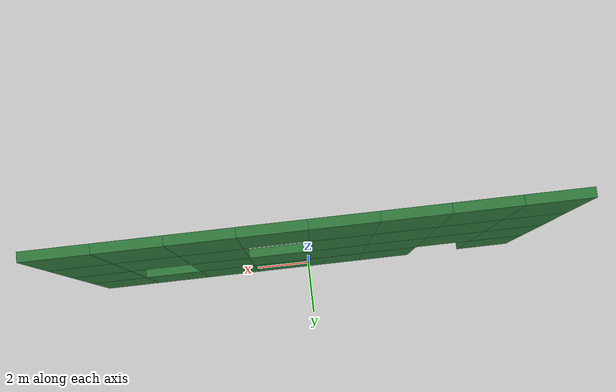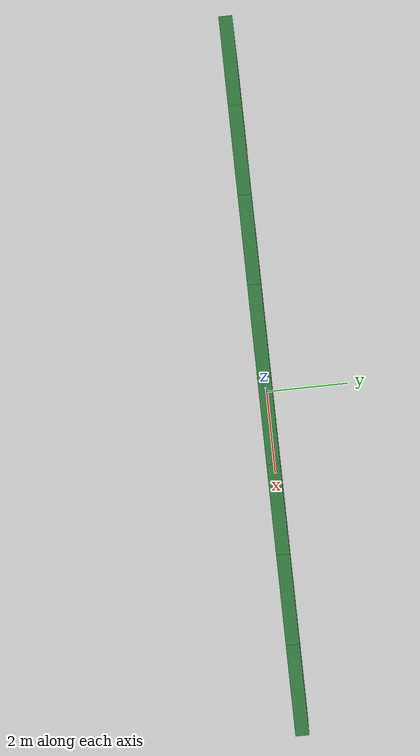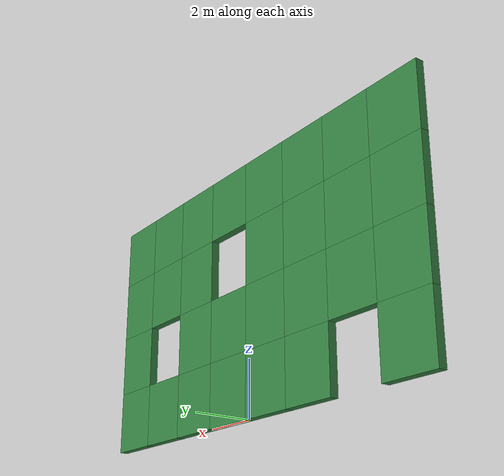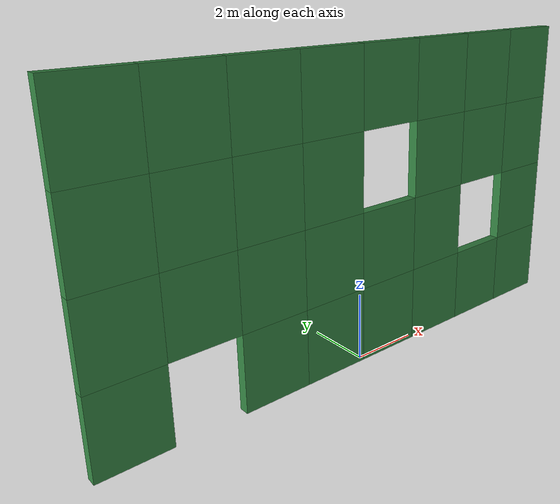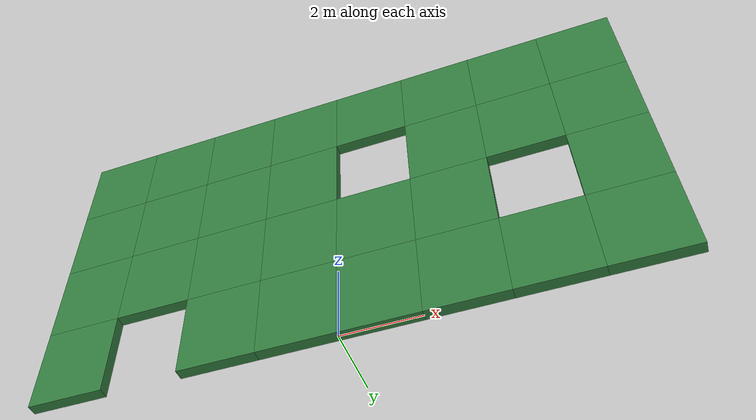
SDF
<?xml version="1.0"?>
<sdf version="1.8">
<model name="cheese_wall">
  <static>true</static>
  <link name="link">

    <collision name="cell_c0_r0"><pose>-7.0000 0 1.1250 0 0 0</pose><geometry><box><size>2.0000 0.3 2.2500</size></box></geometry></collision>
    <visual name="cell_c0_r0_v"><cast_shadows>false</cast_shadows><pose>-7.0000 0 1.1250 0 0 0</pose><geometry><box><size>2.0000 0.3 2.2500</size></box></geometry><material><ambient>0.15 0.4 0.2 1</ambient><diffuse>0.2 0.5 0.25 1</diffuse><specular>0.15 0.15 0.15 1</specular></material></visual>

    <collision name="cell_c2_r0"><pose>-3.0000 0 1.1250 0 0 0</pose><geometry><box><size>2.0000 0.3 2.2500</size></box></geometry></collision>
    <visual name="cell_c2_r0_v"><cast_shadows>false</cast_shadows><pose>-3.0000 0 1.1250 0 0 0</pose><geometry><box><size>2.0000 0.3 2.2500</size></box></geometry><material><ambient>0.15 0.4 0.2 1</ambient><diffuse>0.2 0.5 0.25 1</diffuse><specular>0.15 0.15 0.15 1</specular></material></visual>

    <collision name="cell_c3_r0"><pose>-1.0000 0 1.1250 0 0 0</pose><geometry><box><size>2.0000 0.3 2.2500</size></box></geometry></collision>
    <visual name="cell_c3_r0_v"><cast_shadows>false</cast_shadows><pose>-1.0000 0 1.1250 0 0 0</pose><geometry><box><size>2.0000 0.3 2.2500</size></box></geometry><material><ambient>0.15 0.4 0.2 1</ambient><diffuse>0.2 0.5 0.25 1</diffuse><specular>0.15 0.15 0.15 1</specular></material></visual>

    <collision name="cell_c4_r0"><pose>1.0000 0 1.1250 0 0 0</pose><geometry><box><size>2.0000 0.3 2.2500</size></box></geometry></collision>
    <visual name="cell_c4_r0_v"><cast_shadows>false</cast_shadows><pose>1.0000 0 1.1250 0 0 0</pose><geometry><box><size>2.0000 0.3 2.2500</size></box></geometry><material><ambient>0.15 0.4 0.2 1</ambient><diffuse>0.2 0.5 0.25 1</diffuse><specular>0.15 0.15 0.15 1</specular></material></visual>

    <collision name="cell_c5_r0"><pose>3.0000 0 1.1250 0 0 0</pose><geometry><box><size>2.0000 0.3 2.2500</size></box></geometry></collision>
    <visual name="cell_c5_r0_v"><cast_shadows>false</cast_shadows><pose>3.0000 0 1.1250 0 0 0</pose><geometry><box><size>2.0000 0.3 2.2500</size></box></geometry><material><ambient>0.15 0.4 0.2 1</ambient><diffuse>0.2 0.5 0.25 1</diffuse><specular>0.15 0.15 0.15 1</specular></material></visual>

    <collision name="cell_c6_r0"><pose>5.0000 0 1.1250 0 0 0</pose><geometry><box><size>2.0000 0.3 2.2500</size></box></geometry></collision>
    <visual name="cell_c6_r0_v"><cast_shadows>false</cast_shadows><pose>5.0000 0 1.1250 0 0 0</pose><geometry><box><size>2.0000 0.3 2.2500</size></box></geometry><material><ambient>0.15 0.4 0.2 1</ambient><diffuse>0.2 0.5 0.25 1</diffuse><specular>0.15 0.15 0.15 1</specular></material></visual>

    <collision name="cell_c7_r0"><pose>7.0000 0 1.1250 0 0 0</pose><geometry><box><size>2.0000 0.3 2.2500</size></box></geometry></collision>
    <visual name="cell_c7_r0_v"><cast_shadows>false</cast_shadows><pose>7.0000 0 1.1250 0 0 0</pose><geometry><box><size>2.0000 0.3 2.2500</size></box></geometry><material><ambient>0.15 0.4 0.2 1</ambient><diffuse>0.2 0.5 0.25 1</diffuse><specular>0.15 0.15 0.15 1</specular></material></visual>

    <collision name="cell_c0_r1"><pose>-7.0000 0 3.3750 0 0 0</pose><geometry><box><size>2.0000 0.3 2.2500</size></box></geometry></collision>
    <visual name="cell_c0_r1_v"><cast_shadows>false</cast_shadows><pose>-7.0000 0 3.3750 0 0 0</pose><geometry><box><size>2.0000 0.3 2.2500</size></box></geometry><material><ambient>0.15 0.4 0.2 1</ambient><diffuse>0.2 0.5 0.25 1</diffuse><specular>0.15 0.15 0.15 1</specular></material></visual>

    <collision name="cell_c1_r1"><pose>-5.0000 0 3.3750 0 0 0</pose><geometry><box><size>2.0000 0.3 2.2500</size></box></geometry></collision>
    <visual name="cell_c1_r1_v"><cast_shadows>false</cast_shadows><pose>-5.0000 0 3.3750 0 0 0</pose><geometry><box><size>2.0000 0.3 2.2500</size></box></geometry><material><ambient>0.15 0.4 0.2 1</ambient><diffuse>0.2 0.5 0.25 1</diffuse><specular>0.15 0.15 0.15 1</specular></material></visual>

    <collision name="cell_c2_r1"><pose>-3.0000 0 3.3750 0 0 0</pose><geometry><box><size>2.0000 0.3 2.2500</size></box></geometry></collision>
    <visual name="cell_c2_r1_v"><cast_shadows>false</cast_shadows><pose>-3.0000 0 3.3750 0 0 0</pose><geometry><box><size>2.0000 0.3 2.2500</size></box></geometry><material><ambient>0.15 0.4 0.2 1</ambient><diffuse>0.2 0.5 0.25 1</diffuse><specular>0.15 0.15 0.15 1</specular></material></visual>

    <collision name="cell_c3_r1"><pose>-1.0000 0 3.3750 0 0 0</pose><geometry><box><size>2.0000 0.3 2.2500</size></box></geometry></collision>
    <visual name="cell_c3_r1_v"><cast_shadows>false</cast_shadows><pose>-1.0000 0 3.3750 0 0 0</pose><geometry><box><size>2.0000 0.3 2.2500</size></box></geometry><material><ambient>0.15 0.4 0.2 1</ambient><diffuse>0.2 0.5 0.25 1</diffuse><specular>0.15 0.15 0.15 1</specular></material></visual>

    <collision name="cell_c4_r1"><pose>1.0000 0 3.3750 0 0 0</pose><geometry><box><size>2.0000 0.3 2.2500</size></box></geometry></collision>
    <visual name="cell_c4_r1_v"><cast_shadows>false</cast_shadows><pose>1.0000 0 3.3750 0 0 0</pose><geometry><box><size>2.0000 0.3 2.2500</size></box></geometry><material><ambient>0.15 0.4 0.2 1</ambient><diffuse>0.2 0.5 0.25 1</diffuse><specular>0.15 0.15 0.15 1</specular></material></visual>

    <collision name="cell_c5_r1"><pose>3.0000 0 3.3750 0 0 0</pose><geometry><box><size>2.0000 0.3 2.2500</size></box></geometry></collision>
    <visual name="cell_c5_r1_v"><cast_shadows>false</cast_shadows><pose>3.0000 0 3.3750 0 0 0</pose><geometry><box><size>2.0000 0.3 2.2500</size></box></geometry><material><ambient>0.15 0.4 0.2 1</ambient><diffuse>0.2 0.5 0.25 1</diffuse><specular>0.15 0.15 0.15 1</specular></material></visual>

    <collision name="cell_c7_r1"><pose>7.0000 0 3.3750 0 0 0</pose><geometry><box><size>2.0000 0.3 2.2500</size></box></geometry></collision>
    <visual name="cell_c7_r1_v"><cast_shadows>false</cast_shadows><pose>7.0000 0 3.3750 0 0 0</pose><geometry><box><size>2.0000 0.3 2.2500</size></box></geometry><material><ambient>0.15 0.4 0.2 1</ambient><diffuse>0.2 0.5 0.25 1</diffuse><specular>0.15 0.15 0.15 1</specular></material></visual>

    <collision name="cell_c0_r2"><pose>-7.0000 0 5.6250 0 0 0</pose><geometry><box><size>2.0000 0.3 2.2500</size></box></geometry></collision>
    <visual name="cell_c0_r2_v"><cast_shadows>false</cast_shadows><pose>-7.0000 0 5.6250 0 0 0</pose><geometry><box><size>2.0000 0.3 2.2500</size></box></geometry><material><ambient>0.15 0.4 0.2 1</ambient><diffuse>0.2 0.5 0.25 1</diffuse><specular>0.15 0.15 0.15 1</specular></material></visual>

    <collision name="cell_c1_r2"><pose>-5.0000 0 5.6250 0 0 0</pose><geometry><box><size>2.0000 0.3 2.2500</size></box></geometry></collision>
    <visual name="cell_c1_r2_v"><cast_shadows>false</cast_shadows><pose>-5.0000 0 5.6250 0 0 0</pose><geometry><box><size>2.0000 0.3 2.2500</size></box></geometry><material><ambient>0.15 0.4 0.2 1</ambient><diffuse>0.2 0.5 0.25 1</diffuse><specular>0.15 0.15 0.15 1</specular></material></visual>

    <collision name="cell_c2_r2"><pose>-3.0000 0 5.6250 0 0 0</pose><geometry><box><size>2.0000 0.3 2.2500</size></box></geometry></collision>
    <visual name="cell_c2_r2_v"><cast_shadows>false</cast_shadows><pose>-3.0000 0 5.6250 0 0 0</pose><geometry><box><size>2.0000 0.3 2.2500</size></box></geometry><material><ambient>0.15 0.4 0.2 1</ambient><diffuse>0.2 0.5 0.25 1</diffuse><specular>0.15 0.15 0.15 1</specular></material></visual>

    <collision name="cell_c3_r2"><pose>-1.0000 0 5.6250 0 0 0</pose><geometry><box><size>2.0000 0.3 2.2500</size></box></geometry></collision>
    <visual name="cell_c3_r2_v"><cast_shadows>false</cast_shadows><pose>-1.0000 0 5.6250 0 0 0</pose><geometry><box><size>2.0000 0.3 2.2500</size></box></geometry><material><ambient>0.15 0.4 0.2 1</ambient><diffuse>0.2 0.5 0.25 1</diffuse><specular>0.15 0.15 0.15 1</specular></material></visual>

    <collision name="cell_c5_r2"><pose>3.0000 0 5.6250 0 0 0</pose><geometry><box><size>2.0000 0.3 2.2500</size></box></geometry></collision>
    <visual name="cell_c5_r2_v"><cast_shadows>false</cast_shadows><pose>3.0000 0 5.6250 0 0 0</pose><geometry><box><size>2.0000 0.3 2.2500</size></box></geometry><material><ambient>0.15 0.4 0.2 1</ambient><diffuse>0.2 0.5 0.25 1</diffuse><specular>0.15 0.15 0.15 1</specular></material></visual>

    <collision name="cell_c6_r2"><pose>5.0000 0 5.6250 0 0 0</pose><geometry><box><size>2.0000 0.3 2.2500</size></box></geometry></collision>
    <visual name="cell_c6_r2_v"><cast_shadows>false</cast_shadows><pose>5.0000 0 5.6250 0 0 0</pose><geometry><box><size>2.0000 0.3 2.2500</size></box></geometry><material><ambient>0.15 0.4 0.2 1</ambient><diffuse>0.2 0.5 0.25 1</diffuse><specular>0.15 0.15 0.15 1</specular></material></visual>

    <collision name="cell_c7_r2"><pose>7.0000 0 5.6250 0 0 0</pose><geometry><box><size>2.0000 0.3 2.2500</size></box></geometry></collision>
    <visual name="cell_c7_r2_v"><cast_shadows>false</cast_shadows><pose>7.0000 0 5.6250 0 0 0</pose><geometry><box><size>2.0000 0.3 2.2500</size></box></geometry><material><ambient>0.15 0.4 0.2 1</ambient><diffuse>0.2 0.5 0.25 1</diffuse><specular>0.15 0.15 0.15 1</specular></material></visual>

    <collision name="cell_c0_r3"><pose>-7.0000 0 7.8750 0 0 0</pose><geometry><box><size>2.0000 0.3 2.2500</size></box></geometry></collision>
    <visual name="cell_c0_r3_v"><cast_shadows>false</cast_shadows><pose>-7.0000 0 7.8750 0 0 0</pose><geometry><box><size>2.0000 0.3 2.2500</size></box></geometry><material><ambient>0.15 0.4 0.2 1</ambient><diffuse>0.2 0.5 0.25 1</diffuse><specular>0.15 0.15 0.15 1</specular></material></visual>

    <collision name="cell_c1_r3"><pose>-5.0000 0 7.8750 0 0 0</pose><geometry><box><size>2.0000 0.3 2.2500</size></box></geometry></collision>
    <visual name="cell_c1_r3_v"><cast_shadows>false</cast_shadows><pose>-5.0000 0 7.8750 0 0 0</pose><geometry><box><size>2.0000 0.3 2.2500</size></box></geometry><material><ambient>0.15 0.4 0.2 1</ambient><diffuse>0.2 0.5 0.25 1</diffuse><specular>0.15 0.15 0.15 1</specular></material></visual>

    <collision name="cell_c2_r3"><pose>-3.0000 0 7.8750 0 0 0</pose><geometry><box><size>2.0000 0.3 2.2500</size></box></geometry></collision>
    <visual name="cell_c2_r3_v"><cast_shadows>false</cast_shadows><pose>-3.0000 0 7.8750 0 0 0</pose><geometry><box><size>2.0000 0.3 2.2500</size></box></geometry><material><ambient>0.15 0.4 0.2 1</ambient><diffuse>0.2 0.5 0.25 1</diffuse><specular>0.15 0.15 0.15 1</specular></material></visual>

    <collision name="cell_c3_r3"><pose>-1.0000 0 7.8750 0 0 0</pose><geometry><box><size>2.0000 0.3 2.2500</size></box></geometry></collision>
    <visual name="cell_c3_r3_v"><cast_shadows>false</cast_shadows><pose>-1.0000 0 7.8750 0 0 0</pose><geometry><box><size>2.0000 0.3 2.2500</size></box></geometry><material><ambient>0.15 0.4 0.2 1</ambient><diffuse>0.2 0.5 0.25 1</diffuse><specular>0.15 0.15 0.15 1</specular></material></visual>

    <collision name="cell_c4_r3"><pose>1.0000 0 7.8750 0 0 0</pose><geometry><box><size>2.0000 0.3 2.2500</size></box></geometry></collision>
    <visual name="cell_c4_r3_v"><cast_shadows>false</cast_shadows><pose>1.0000 0 7.8750 0 0 0</pose><geometry><box><size>2.0000 0.3 2.2500</size></box></geometry><material><ambient>0.15 0.4 0.2 1</ambient><diffuse>0.2 0.5 0.25 1</diffuse><specular>0.15 0.15 0.15 1</specular></material></visual>

    <collision name="cell_c5_r3"><pose>3.0000 0 7.8750 0 0 0</pose><geometry><box><size>2.0000 0.3 2.2500</size></box></geometry></collision>
    <visual name="cell_c5_r3_v"><cast_shadows>false</cast_shadows><pose>3.0000 0 7.8750 0 0 0</pose><geometry><box><size>2.0000 0.3 2.2500</size></box></geometry><material><ambient>0.15 0.4 0.2 1</ambient><diffuse>0.2 0.5 0.25 1</diffuse><specular>0.15 0.15 0.15 1</specular></material></visual>

    <collision name="cell_c6_r3"><pose>5.0000 0 7.8750 0 0 0</pose><geometry><box><size>2.0000 0.3 2.2500</size></box></geometry></collision>
    <visual name="cell_c6_r3_v"><cast_shadows>false</cast_shadows><pose>5.0000 0 7.8750 0 0 0</pose><geometry><box><size>2.0000 0.3 2.2500</size></box></geometry><material><ambient>0.15 0.4 0.2 1</ambient><diffuse>0.2 0.5 0.25 1</diffuse><specular>0.15 0.15 0.15 1</specular></material></visual>

    <collision name="cell_c7_r3"><pose>7.0000 0 7.8750 0 0 0</pose><geometry><box><size>2.0000 0.3 2.2500</size></box></geometry></collision>
    <visual name="cell_c7_r3_v"><cast_shadows>false</cast_shadows><pose>7.0000 0 7.8750 0 0 0</pose><geometry><box><size>2.0000 0.3 2.2500</size></box></geometry><material><ambient>0.15 0.4 0.2 1</ambient><diffuse>0.2 0.5 0.25 1</diffuse><specular>0.15 0.15 0.15 1</specular></material></visual>

  </link>
</model>
</sdf>
